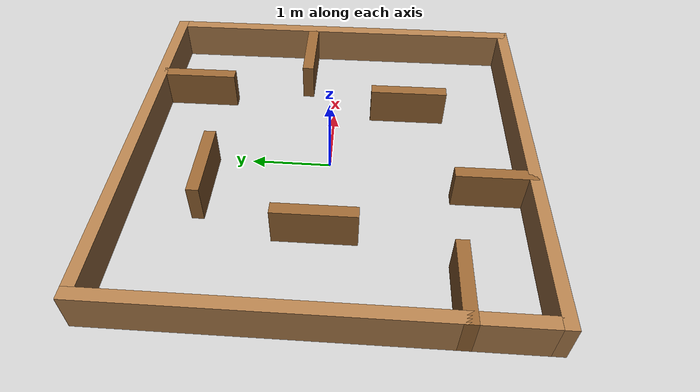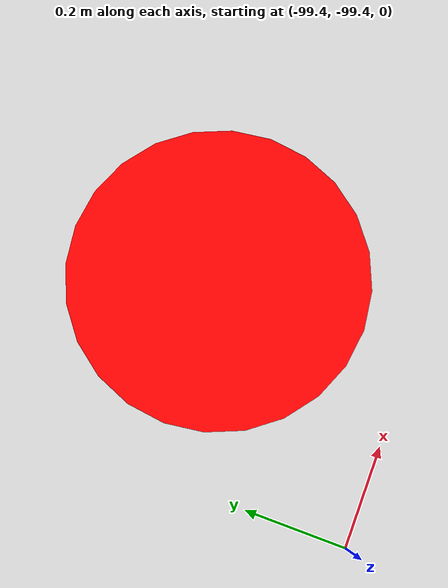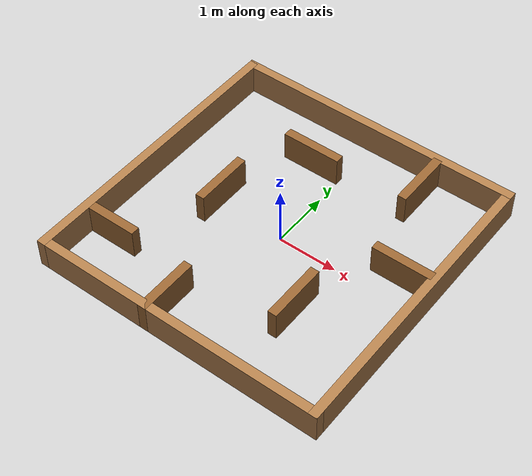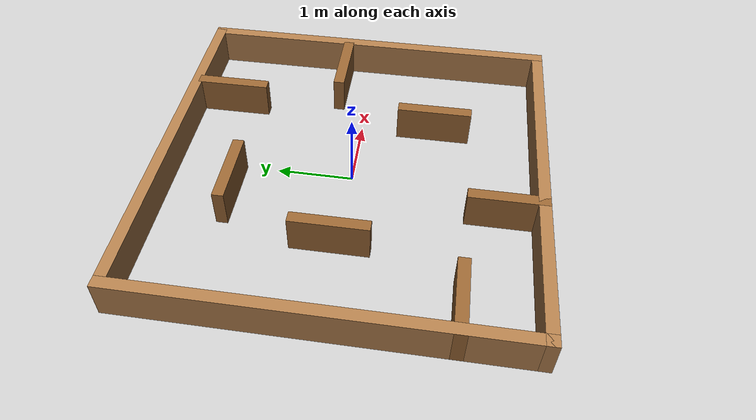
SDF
<?xml version="1.0" ?>
<sdf version="1.8">
  <world name="drl_stage4">

    <!-- Required gz-sim plugins -->
    <plugin filename="gz-sim-physics-system"           name="gz::sim::systems::Physics"/>
    <plugin filename="gz-sim-sensors-system"           name="gz::sim::systems::Sensors">
      <render_engine>ogre2</render_engine>
    </plugin>
    <plugin filename="gz-sim-user-commands-system"     name="gz::sim::systems::UserCommands"/>
    <plugin filename="gz-sim-scene-broadcaster-system" name="gz::sim::systems::SceneBroadcaster"/>

    <physics name="1ms" type="ignored">
      <max_step_size>0.001</max_step_size>
      <real_time_factor>1.0</real_time_factor>
    </physics>
    <scene>
      <ambient>0.4 0.4 0.4 1</ambient>
      <background>0.7 0.7 0.7 1</background>
    </scene>

    <light type="directional" name="sun">
      <cast_shadows>true</cast_shadows>
      <pose>0 0 10 0 0 0</pose>
      <diffuse>0.8 0.8 0.8 1</diffuse>
      <specular>0.2 0.2 0.2 1</specular>
      <direction>-0.5 0.1 -0.9</direction>
    </light>

    <!-- Ground plane -->
    <model name="ground_plane">
      <static>true</static>
      <link name="link">
        <collision name="collision">
          <geometry><plane><normal>0 0 1</normal><size>20 20</size></plane></geometry>
        </collision>
        <visual name="visual">
          <geometry><plane><normal>0 0 1</normal><size>20 20</size></plane></geometry>
          <material><ambient>0.8 0.8 0.8 1</ambient><diffuse>0.8 0.8 0.8 1</diffuse></material>
        </visual>
      </link>
    </model>

    <!-- Outer boundary walls (5 m long, 0.15 m thick, 0.5 m tall)   -->
    <!-- Matches turtlebot3_drl_world/model.sdf outer walls           -->
    <model name="outer_walls">
      <static>true</static>

      <!-- West wall -->
      <link name="Wall_1">
        <pose>-2.425 0 0.25 0 0 1.5708</pose>
        <collision name="collision">
          <geometry><box><size>5 0.15 0.5</size></box></geometry>
        </collision>
        <visual name="visual">
          <geometry><box><size>5 0.15 0.5</size></box></geometry>
          <material><ambient>0.7 0.5 0.3 1</ambient><diffuse>0.7 0.5 0.3 1</diffuse></material>
        </visual>
      </link>

      <!-- North wall -->
      <link name="Wall_2">
        <pose>0 2.425 0.25 0 0 0</pose>
        <collision name="collision">
          <geometry><box><size>5 0.15 0.5</size></box></geometry>
        </collision>
        <visual name="visual">
          <geometry><box><size>5 0.15 0.5</size></box></geometry>
          <material><ambient>0.7 0.5 0.3 1</ambient><diffuse>0.7 0.5 0.3 1</diffuse></material>
        </visual>
      </link>

      <!-- East wall -->
      <link name="Wall_3">
        <pose>2.425 0 0.25 0 0 -1.5708</pose>
        <collision name="collision">
          <geometry><box><size>5 0.15 0.5</size></box></geometry>
        </collision>
        <visual name="visual">
          <geometry><box><size>5 0.15 0.5</size></box></geometry>
          <material><ambient>0.7 0.5 0.3 1</ambient><diffuse>0.7 0.5 0.3 1</diffuse></material>
        </visual>
      </link>

      <!-- South wall -->
      <link name="Wall_4">
        <pose>0 -2.425 0.25 0 0 3.14159</pose>
        <collision name="collision">
          <geometry><box><size>5 0.15 0.5</size></box></geometry>
        </collision>
        <visual name="visual">
          <geometry><box><size>5 0.15 0.5</size></box></geometry>
          <material><ambient>0.7 0.5 0.3 1</ambient><diffuse>0.7 0.5 0.3 1</diffuse></material>
        </visual>
      </link>
    </model>

    <!-- Inner walls (from inner_walls/model.sdf — 7 wall segments)  -->
    <!-- Positions and sizes exactly match the creator's model        -->
    <model name="inner_walls">
      <static>true</static>

      <link name="inner_wall_1">
        <pose>-2.0 -1.5 0.25 0 0 0</pose>
        <collision name="collision">
          <geometry><box><size>1 0.15 0.5</size></box></geometry>
        </collision>
        <visual name="visual">
          <geometry><box><size>1 0.15 0.5</size></box></geometry>
          <material><ambient>0.6 0.4 0.2 1</ambient><diffuse>0.6 0.4 0.2 1</diffuse></material>
        </visual>
      </link>

      <link name="inner_wall_2">
        <pose>-0.5 -2.0 0.25 0 0 1.5708</pose>
        <collision name="collision">
          <geometry><box><size>1 0.15 0.5</size></box></geometry>
        </collision>
        <visual name="visual">
          <geometry><box><size>1 0.15 0.5</size></box></geometry>
          <material><ambient>0.6 0.4 0.2 1</ambient><diffuse>0.6 0.4 0.2 1</diffuse></material>
        </visual>
      </link>

      <link name="inner_wall_3">
        <pose>1.0 -1.0 0.25 0 0 1.5708</pose>
        <collision name="collision">
          <geometry><box><size>1 0.15 0.5</size></box></geometry>
        </collision>
        <visual name="visual">
          <geometry><box><size>1 0.15 0.5</size></box></geometry>
          <material><ambient>0.6 0.4 0.2 1</ambient><diffuse>0.6 0.4 0.2 1</diffuse></material>
        </visual>
      </link>

      <link name="inner_wall_4">
        <pose>1.2 1.9 0.25 0 0 -1.5708</pose>
        <collision name="collision">
          <geometry><box><size>1 0.15 0.5</size></box></geometry>
        </collision>
        <visual name="visual">
          <geometry><box><size>1 0.15 0.5</size></box></geometry>
          <material><ambient>0.6 0.4 0.2 1</ambient><diffuse>0.6 0.4 0.2 1</diffuse></material>
        </visual>
      </link>

      <link name="inner_wall_5">
        <pose>1.9 0.4 0.25 0 0 0</pose>
        <collision name="collision">
          <geometry><box><size>1 0.15 0.5</size></box></geometry>
        </collision>
        <visual name="visual">
          <geometry><box><size>1 0.15 0.5</size></box></geometry>
          <material><ambient>0.6 0.4 0.2 1</ambient><diffuse>0.6 0.4 0.2 1</diffuse></material>
        </visual>
      </link>

      <link name="inner_wall_6">
        <pose>-0.5 1.5 0.25 0 0 0</pose>
        <collision name="collision">
          <geometry><box><size>1 0.15 0.5</size></box></geometry>
        </collision>
        <visual name="visual">
          <geometry><box><size>1 0.15 0.5</size></box></geometry>
          <material><ambient>0.6 0.4 0.2 1</ambient><diffuse>0.6 0.4 0.2 1</diffuse></material>
        </visual>
      </link>

      <link name="inner_wall_7">
        <pose>-1.2 0.092 0.25 0 0 -1.5708</pose>
        <collision name="collision">
          <geometry><box><size>1 0.15 0.5</size></box></geometry>
        </collision>
        <visual name="visual">
          <geometry><box><size>1 0.15 0.5</size></box></geometry>
          <material><ambient>0.6 0.4 0.2 1</ambient><diffuse>0.6 0.4 0.2 1</diffuse></material>
        </visual>
      </link>
    </model>

    <!-- Goal box — pre-spawned off-arena, teleported by drl_gazebo  -->
    <model name="goal">
      <static>true</static>
      <pose>-99 -99 0 0 0 0</pose>
      <link name="goal_link">
        <visual name="visual">
          <pose>0 0 0.0005 0 0 0</pose>
          <geometry>
            <cylinder><radius>0.3</radius><length>0.001</length></cylinder>
          </geometry>
          <material><ambient>1 0 0 1</ambient><diffuse>1 0 0 1</diffuse></material>
        </visual>
      </link>
    </model>

  </world>
</sdf>
